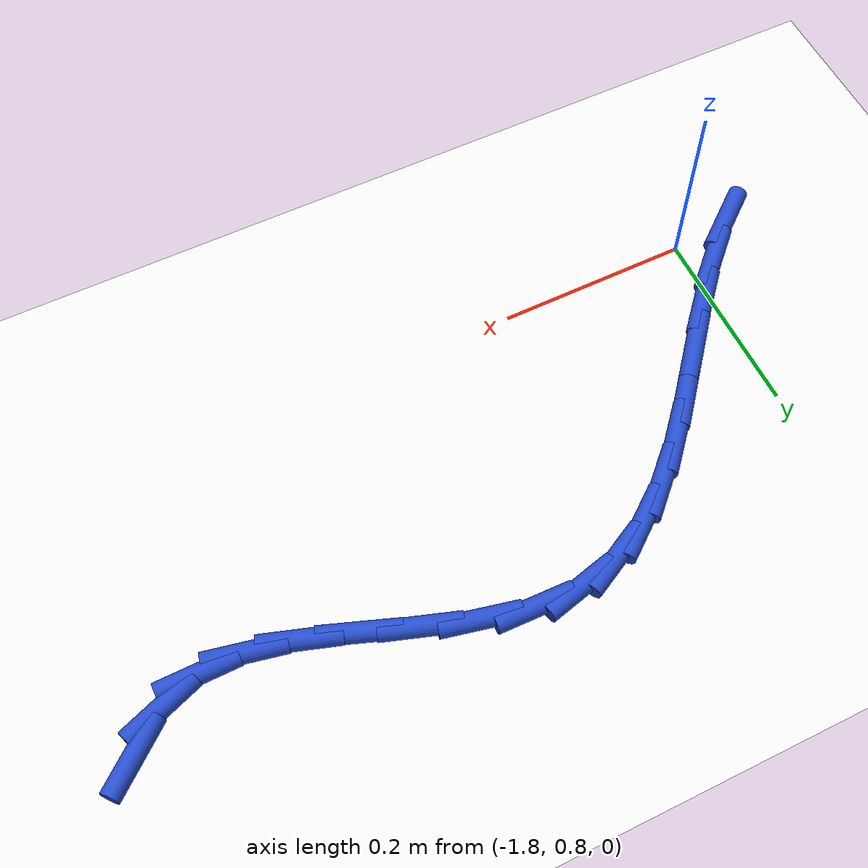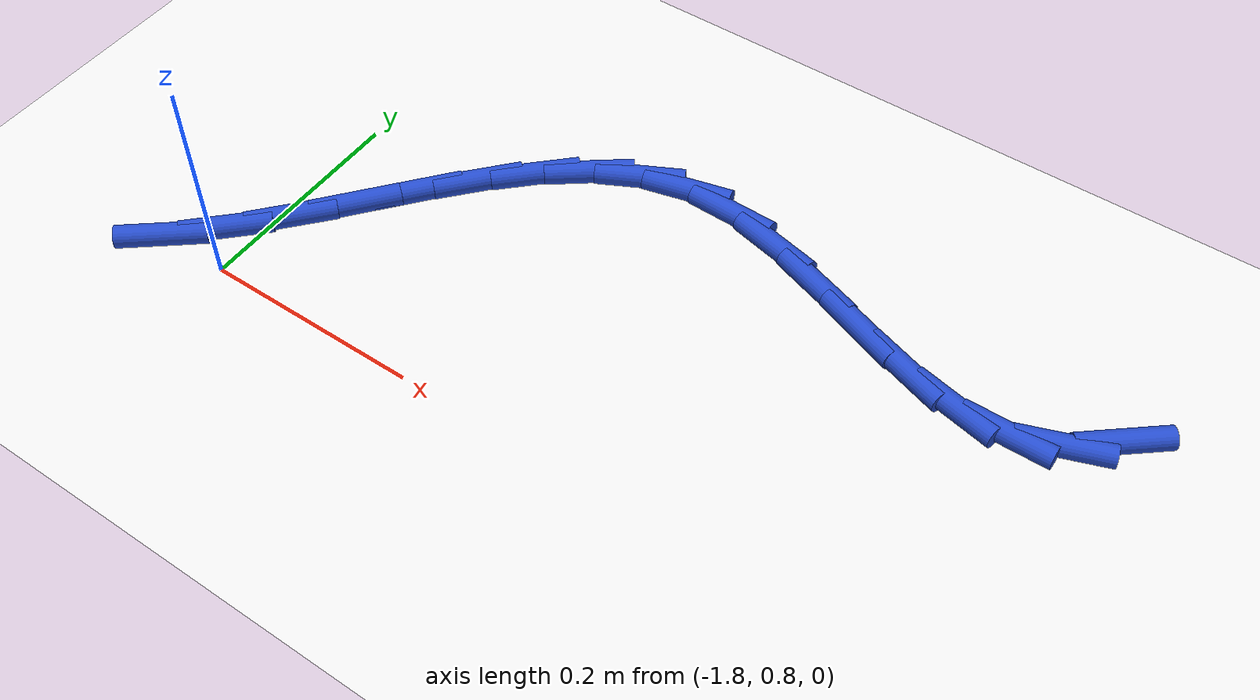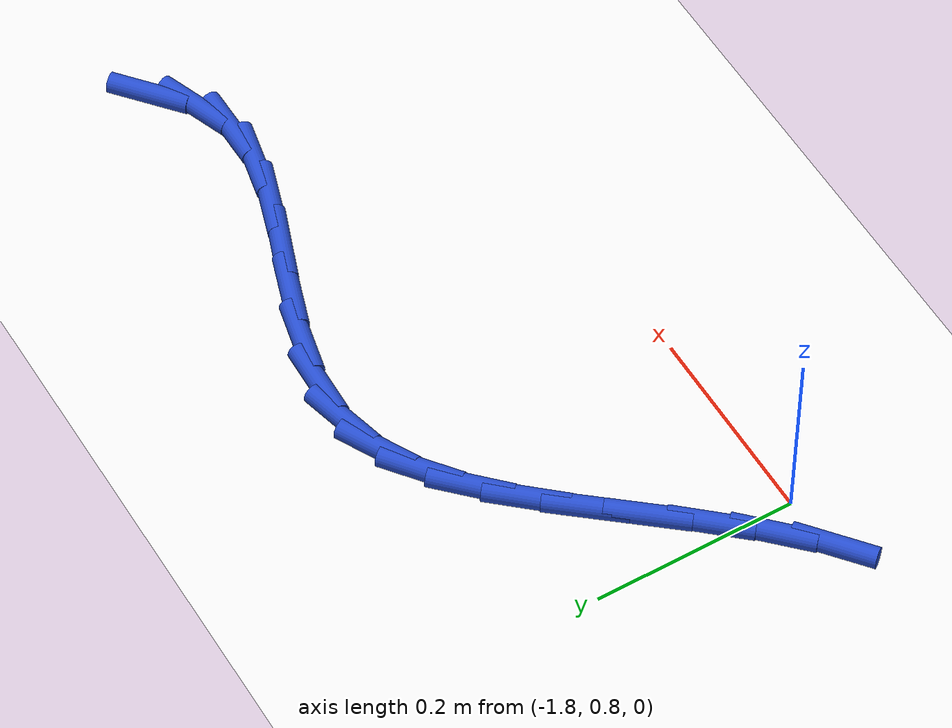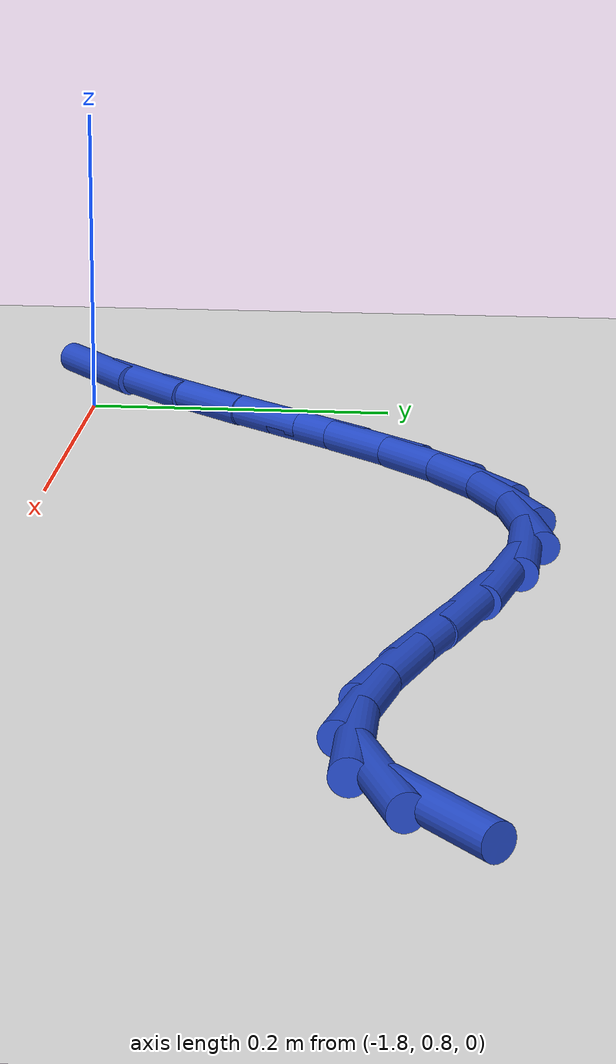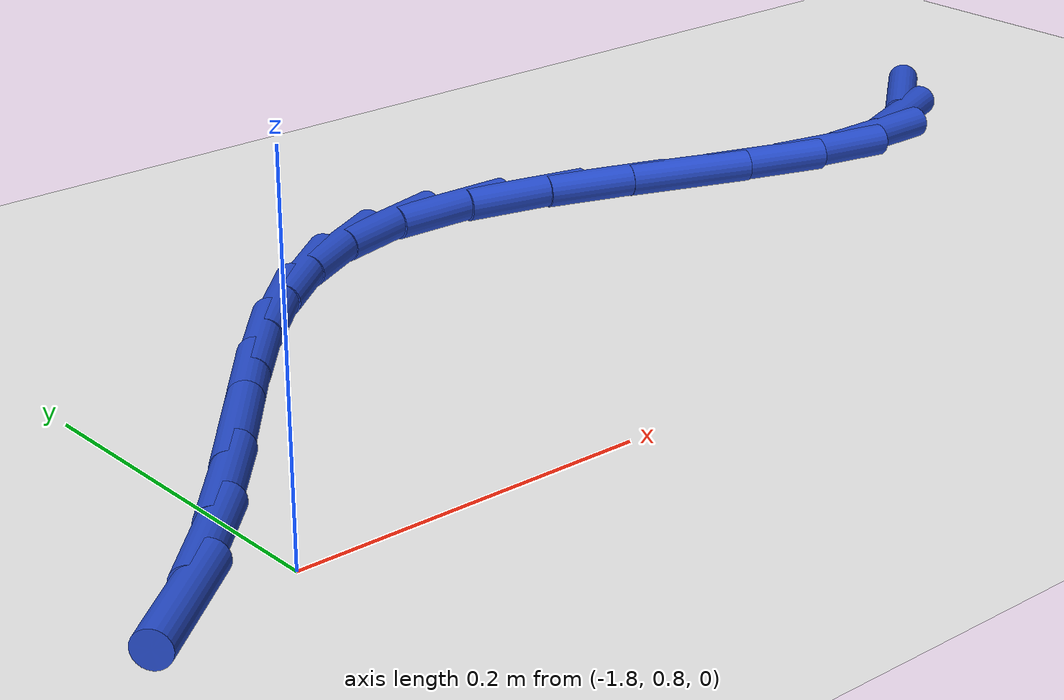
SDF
<sdf version="1.6">
 <world name="default">
  <model name="ground_plane">
   <static>1</static>
   <link name="link">
    <collision name="collision">
     <geometry><plane><normal>0 0 1</normal><size>100 100</size></plane></geometry>
     <surface><friction><ode><mu>100</mu><mu2>50</mu2></ode></friction></surface>
    </collision>
    <visual name="visual">
     <cast_shadows>0</cast_shadows>
     <geometry><plane><normal>0 0 1</normal><size>100 100</size></plane></geometry>
     <material>
      <script><uri>file://media/materials/scripts/gazebo.material</uri><name>Gazebo/WhiteGlow</name></script>
     </material>
    </visual>
   </link>
  </model>
  <model name="line">
   <link name="link_38">
    <pose>-1.101143775810542 1.066222361362403 0.01 0 1.57 0.6975082273294769</pose>
    <collision name="collision">
     <geometry><cylinder><radius>0.01</radius><length>0.08</length></cylinder></geometry>
    </collision>
    <visual name="visual">
     <material>
      <script><name>Gazebo/Blue</name><uri>file://media/materials/scripts/gazebo.material</uri></script>
     </material>
     <geometry><cylinder><radius>0.01</radius><length>0.08</length></cylinder></geometry>
    </visual>
   </link>
   <link name="link_39">
    <pose>-1.1368106313219417 1.0363321906333856 0.01 0 1.57 0.35601924894925785</pose>
    <collision name="collision">
     <geometry><cylinder><radius>0.01</radius><length>0.08</length></cylinder></geometry>
    </collision>
    <visual name="visual">
     <material>
      <script><name>Gazebo/Blue</name><uri>file://media/materials/scripts/gazebo.material</uri></script>
     </material>
     <geometry><cylinder><radius>0.01</radius><length>0.08</length></cylinder></geometry>
    </visual>
   </link>
   <link name="link_40">
    <pose>-1.177342311507074 1.0212598819654546 0.01 0 1.57 0.006444618043829705</pose>
    <collision name="collision">
     <geometry><cylinder><radius>0.01</radius><length>0.08</length></cylinder></geometry>
    </collision>
    <visual name="visual">
     <material>
      <script><name>Gazebo/Blue</name><uri>file://media/materials/scripts/gazebo.material</uri></script>
     </material>
     <geometry><cylinder><radius>0.01</radius><length>0.08</length></cylinder></geometry>
    </visual>
   </link>
   <link name="link_41">
    <pose>-1.2227420854245863 1.0209672937125696 0.01 0 1.57 -0.2095694489529108</pose>
    <collision name="collision">
     <geometry><cylinder><radius>0.01</radius><length>0.08</length></cylinder></geometry>
    </collision>
    <visual name="visual">
     <material>
      <script><name>Gazebo/Blue</name><uri>file://media/materials/scripts/gazebo.material</uri></script>
     </material>
     <geometry><cylinder><radius>0.01</radius><length>0.08</length></cylinder></geometry>
    </visual>
   </link>
   <link name="link_42">
    <pose>-1.2717114577143405 1.0313827057975609 0.01 0 1.57 -0.31944922550888594</pose>
    <collision name="collision">
     <geometry><cylinder><radius>0.01</radius><length>0.08</length></cylinder></geometry>
    </collision>
    <visual name="visual">
     <material>
      <script><name>Gazebo/Blue</name><uri>file://media/materials/scripts/gazebo.material</uri></script>
     </material>
     <geometry><cylinder><radius>0.01</radius><length>0.08</length></cylinder></geometry>
    </visual>
   </link>
   <link name="link_43">
    <pose>-1.3229149150229103 1.0483196961456123 0.01 0 1.57 -0.3542853061502275</pose>
    <collision name="collision">
     <geometry><cylinder><radius>0.01</radius><length>0.08</length></cylinder></geometry>
    </collision>
    <visual name="visual">
     <material>
      <script><name>Gazebo/Blue</name><uri>file://media/materials/scripts/gazebo.material</uri></script>
     </material>
     <geometry><cylinder><radius>0.01</radius><length>0.08</length></cylinder></geometry>
    </visual>
   </link>
   <link name="link_44">
    <pose>-1.3750169439968674 1.067591842681907 0.01 0 1.57 -0.32521631034067916</pose>
    <collision name="collision">
     <geometry><cylinder><radius>0.01</radius><length>0.08</length></cylinder></geometry>
    </collision>
    <visual name="visual">
     <material>
      <script><name>Gazebo/Blue</name><uri>file://media/materials/scripts/gazebo.material</uri></script>
     </material>
     <geometry><cylinder><radius>0.01</radius><length>0.08</length></cylinder></geometry>
    </visual>
   </link>
   <link name="link_45">
    <pose>-1.4266820312827861 1.0850127233316291 0.01 0 1.57 -0.2243142213830926</pose>
    <collision name="collision">
     <geometry><cylinder><radius>0.01</radius><length>0.08</length></cylinder></geometry>
    </collision>
    <visual name="visual">
     <material>
      <script><name>Gazebo/Blue</name><uri>file://media/materials/scripts/gazebo.material</uri></script>
     </material>
     <geometry><cylinder><radius>0.01</radius><length>0.08</length></cylinder></geometry>
    </visual>
   </link>
   <link name="link_46">
    <pose>-1.4765746635272377 1.0963959160199614 0.01 0 1.57 -0.025791967116371044</pose>
    <collision name="collision">
     <geometry><cylinder><radius>0.01</radius><length>0.08</length></cylinder></geometry>
    </collision>
    <visual name="visual">
     <material>
      <script><name>Gazebo/Blue</name><uri>file://media/materials/scripts/gazebo.material</uri></script>
     </material>
     <geometry><cylinder><radius>0.01</radius><length>0.08</length></cylinder></geometry>
    </visual>
   </link>
   <link name="link_47">
    <pose>-1.5233753430168322 1.0976032653381331 0.01 0 1.57 0.24336707877210206</pose>
    <collision name="collision">
     <geometry><cylinder><radius>0.01</radius><length>0.08</length></cylinder></geometry>
    </collision>
    <visual name="visual">
     <material>
      <script><name>Gazebo/Blue</name><uri>file://media/materials/scripts/gazebo.material</uri></script>
     </material>
     <geometry><cylinder><radius>0.01</radius><length>0.08</length></cylinder></geometry>
    </visual>
   </link>
   <link name="link_48">
    <pose>-1.5665560770273415 1.0868819908544052 0.01 0 1.57 0.4811537703098909</pose>
    <collision name="collision">
     <geometry><cylinder><radius>0.01</radius><length>0.08</length></cylinder></geometry>
    </collision>
    <visual name="visual">
     <material>
      <script><name>Gazebo/Blue</name><uri>file://media/materials/scripts/gazebo.material</uri></script>
     </material>
     <geometry><cylinder><radius>0.01</radius><length>0.08</length></cylinder></geometry>
    </visual>
   </link>
   <link name="link_49">
    <pose>-1.6067270898729125 1.0659095803968053 0.01 0 1.57 0.6582996687488513</pose>
    <collision name="collision">
     <geometry><cylinder><radius>0.01</radius><length>0.08</length></cylinder></geometry>
    </collision>
    <visual name="visual">
     <material>
      <script><name>Gazebo/Blue</name><uri>file://media/materials/scripts/gazebo.material</uri></script>
     </material>
     <geometry><cylinder><radius>0.01</radius><length>0.08</length></cylinder></geometry>
    </visual>
   </link>
   <link name="link_50">
    <pose>-1.6445868454936012 1.0366294513813086 0.01 0 1.57 0.7770172147172573</pose>
    <collision name="collision">
     <geometry><cylinder><radius>0.01</radius><length>0.08</length></cylinder></geometry>
    </collision>
    <visual name="visual">
     <material>
      <script><name>Gazebo/Blue</name><uri>file://media/materials/scripts/gazebo.material</uri></script>
     </material>
     <geometry><cylinder><radius>0.01</radius><length>0.08</length></cylinder></geometry>
    </visual>
   </link>
   <link name="link_51">
    <pose>-1.6808338078294642 1.0009850212238924 0.01 0 1.57 0.8480852810801377</pose>
    <collision name="collision">
     <geometry><cylinder><radius>0.01</radius><length>0.08</length></cylinder></geometry>
    </collision>
    <visual name="visual">
     <material>
      <script><name>Gazebo/Blue</name><uri>file://media/materials/scripts/gazebo.material</uri></script>
     </material>
     <geometry><cylinder><radius>0.01</radius><length>0.08</length></cylinder></geometry>
    </visual>
   </link>
   <link name="link_52">
    <pose>-1.7161664408205572 0.9609197073405321 0.01 0 1.57 0.8807309648319773</pose>
    <collision name="collision">
     <geometry><cylinder><radius>0.01</radius><length>0.08</length></cylinder></geometry>
    </collision>
    <visual name="visual">
     <material>
      <script><name>Gazebo/Blue</name><uri>file://media/materials/scripts/gazebo.material</uri></script>
     </material>
     <geometry><cylinder><radius>0.01</radius><length>0.08</length></cylinder></geometry>
    </visual>
   </link>
   <link name="link_53">
    <pose>-1.7512832084069363 0.9183769271472035 0.01 0 1.57 0.8801545260970428</pose>
    <collision name="collision">
     <geometry><cylinder><radius>0.01</radius><length>0.08</length></cylinder></geometry>
    </collision>
    <visual name="visual">
     <material>
      <script><name>Gazebo/Blue</name><uri>file://media/materials/scripts/gazebo.material</uri></script>
     </material>
     <geometry><cylinder><radius>0.01</radius><length>0.08</length></cylinder></geometry>
    </visual>
   </link>
   <link name="link_54">
    <pose>-1.7868825745286583 0.8753000980598824 0.01 0 1.57 0.8476143012716058</pose>
    <collision name="collision">
     <geometry><cylinder><radius>0.01</radius><length>0.08</length></cylinder></geometry>
    </collision>
    <visual name="visual">
     <material>
      <script><name>Gazebo/Blue</name><uri>file://media/materials/scripts/gazebo.material</uri></script>
     </material>
     <geometry><cylinder><radius>0.01</radius><length>0.08</length></cylinder></geometry>
    </visual>
   </link>
   <link name="link_55">
    <pose>-1.8236630031257786 0.8336326374945455 0.01 0 1.57 0.7809125546839047</pose>
    <collision name="collision">
     <geometry><cylinder><radius>0.01</radius><length>0.08</length></cylinder></geometry>
    </collision>
    <visual name="visual">
     <material>
      <script><name>Gazebo/Blue</name><uri>file://media/materials/scripts/gazebo.material</uri></script>
     </material>
     <geometry><cylinder><radius>0.01</radius><length>0.08</length></cylinder></geometry>
    </visual>
   </link>
   <link name="link_56">
    <pose>-1.8623229581383531 0.7953179628671682 0.01 0 1.57 0.6824615897221823</pose>
    <collision name="collision">
     <geometry><cylinder><radius>0.01</radius><length>0.08</length></cylinder></geometry>
    </collision>
    <visual name="visual">
     <material>
      <script><name>Gazebo/Blue</name><uri>file://media/materials/scripts/gazebo.material</uri></script>
     </material>
     <geometry><cylinder><radius>0.01</radius><length>0.08</length></cylinder></geometry>
    </visual>
   </link>
  </model>
 </world>
</sdf>
